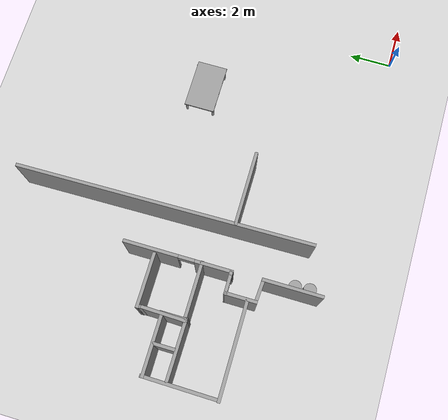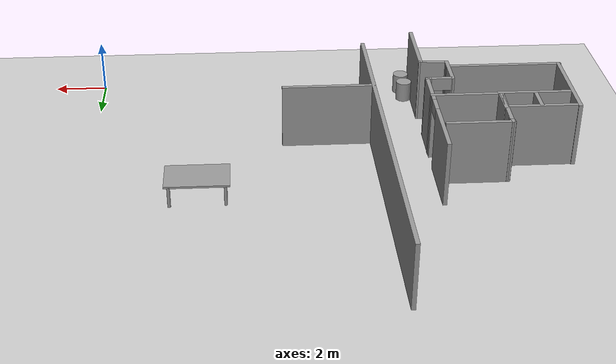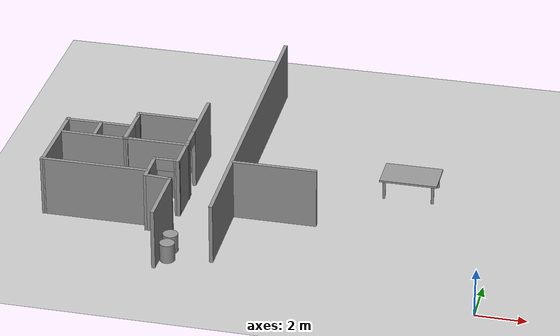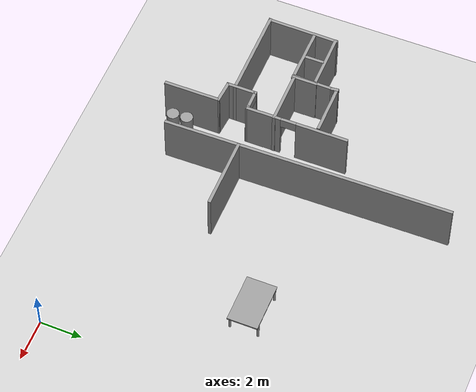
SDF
<sdf version="1.6">
 <world name="default">
  <model name="ground_plane">
   <static>1</static>
   <link name="link">
    <collision name="collision">
     <geometry><plane><normal>0 0 1</normal><size>100 100</size></plane></geometry>
     <surface>
      <contact><collide_bitmask>65535</collide_bitmask></contact>
      <friction><ode><mu>100</mu><mu2>50</mu2></ode></friction>
     </surface>
    </collision>
    <visual name="visual">
     <cast_shadows>0</cast_shadows>
     <geometry><plane><normal>0 0 1</normal><size>100 100</size></plane></geometry>
     <material>
      <script><uri>file://media/materials/scripts/gazebo.material</uri><name>Gazebo/Grey</name></script>
     </material>
    </visual>
   </link>
  </model>
  <model name="six_floor">
   <link name="Wall_138">
    <pose>-18.2446 5.1436 0 0 -0 0</pose>
    <visual name="Wall_138_Visual">
     <pose>0 0 1.25 0 -0 0</pose>
     <geometry><box><size>2.75 0.15 2.5</size></box></geometry>
     <material>
      <script><uri>file://media/materials/scripts/gazebo.material</uri><name>Gazebo/Grey</name></script>
      <ambient>1 1 1 1</ambient>
     </material>
     <meta><layer>0</layer></meta>
    </visual>
    <collision name="Wall_138_Collision">
     <pose>0 0 1.25 0 -0 0</pose>
     <geometry><box><size>2.75 0.15 2.5</size></box></geometry>
     <surface>
      <friction>
       <ode><mu>1</mu><mu2>1</mu2><fdir1>0 0 0</fdir1><slip1>0</slip1><slip2>0</slip2></ode>
       <torsional>
        <coefficient>1</coefficient>
        <patch_radius>0</patch_radius>
        <surface_radius>0</surface_radius>
        <use_patch_radius>1</use_patch_radius>
        <ode><slip>0</slip></ode>
       </torsional>
      </friction>
      <bounce><restitution_coefficient>0</restitution_coefficient><threshold>1e+06</threshold></bounce>
      <contact>
       <collide_without_contact>0</collide_without_contact>
       <collide_without_contact_bitmask>1</collide_without_contact_bitmask>
       <collide_bitmask>1</collide_bitmask>
       <ode>
        <soft_cfm>0</soft_cfm>
        <soft_erp>0.2</soft_erp>
        <kp>1e+13</kp>
        <kd>1</kd>
        <max_vel>0.01</max_vel>
        <min_depth>0</min_depth>
       </ode>
       <bullet>
        <split_impulse>1</split_impulse>
        <split_impulse_penetration_threshold>-0.01</split_impulse_penetration_threshold>
        <soft_cfm>0</soft_cfm>
        <soft_erp>0.2</soft_erp>
        <kp>1e+13</kp>
        <kd>1</kd>
       </bullet>
      </contact>
     </surface>
    </collision>
   </link>
   <link name="Wall_163">
    <pose>-10.5409 3.22741 0 0 -0 0</pose>
    <visual name="Wall_163_Visual">
     <pose>0 0 1.25 0 -0 0</pose>
     <geometry><box><size>3.5 0.15 2.5</size></box></geometry>
     <material>
      <script><uri>file://media/materials/scripts/gazebo.material</uri><name>Gazebo/Grey</name></script>
      <ambient>1 1 1 1</ambient>
     </material>
     <meta><layer>0</layer></meta>
    </visual>
    <collision name="Wall_163_Collision">
     <pose>0 0 1.25 0 -0 0</pose>
     <geometry><box><size>3.5 0.15 2.5</size></box></geometry>
     <surface>
      <friction>
       <ode><mu>1</mu><mu2>1</mu2><fdir1>0 0 0</fdir1><slip1>0</slip1><slip2>0</slip2></ode>
       <torsional>
        <coefficient>1</coefficient>
        <patch_radius>0</patch_radius>
        <surface_radius>0</surface_radius>
        <use_patch_radius>1</use_patch_radius>
        <ode><slip>0</slip></ode>
       </torsional>
      </friction>
      <bounce><restitution_coefficient>0</restitution_coefficient><threshold>1e+06</threshold></bounce>
      <contact>
       <collide_without_contact>0</collide_without_contact>
       <collide_without_contact_bitmask>1</collide_without_contact_bitmask>
       <collide_bitmask>1</collide_bitmask>
       <ode>
        <soft_cfm>0</soft_cfm>
        <soft_erp>0.2</soft_erp>
        <kp>1e+13</kp>
        <kd>1</kd>
        <max_vel>0.01</max_vel>
        <min_depth>0</min_depth>
       </ode>
       <bullet>
        <split_impulse>1</split_impulse>
        <split_impulse_penetration_threshold>-0.01</split_impulse_penetration_threshold>
        <soft_cfm>0</soft_cfm>
        <soft_erp>0.2</soft_erp>
        <kp>1e+13</kp>
        <kd>1</kd>
       </bullet>
      </contact>
     </surface>
    </collision>
   </link>
   <link name="Wall_174">
    <pose>-15.6852 6.24087 0 0 -0 3.14159</pose>
    <visual name="Wall_174_Visual">
     <pose>0 0 1.25 0 -0 0</pose>
     <geometry><box><size>2.5 0.15 2.5</size></box></geometry>
     <material>
      <script><uri>file://media/materials/scripts/gazebo.material</uri><name>Gazebo/Grey</name></script>
      <ambient>1 1 1 1</ambient>
     </material>
     <meta><layer>0</layer></meta>
    </visual>
    <collision name="Wall_174_Collision">
     <pose>0 0 1.25 0 -0 0</pose>
     <geometry><box><size>2.5 0.15 2.5</size></box></geometry>
     <surface>
      <friction>
       <ode><mu>1</mu><mu2>1</mu2><fdir1>0 0 0</fdir1><slip1>0</slip1><slip2>0</slip2></ode>
       <torsional>
        <coefficient>1</coefficient>
        <patch_radius>0</patch_radius>
        <surface_radius>0</surface_radius>
        <use_patch_radius>1</use_patch_radius>
        <ode><slip>0</slip></ode>
       </torsional>
      </friction>
      <bounce><restitution_coefficient>0</restitution_coefficient><threshold>1e+06</threshold></bounce>
      <contact>
       <collide_without_contact>0</collide_without_contact>
       <collide_without_contact_bitmask>1</collide_without_contact_bitmask>
       <collide_bitmask>1</collide_bitmask>
       <ode>
        <soft_cfm>0</soft_cfm>
        <soft_erp>0.2</soft_erp>
        <kp>1e+13</kp>
        <kd>1</kd>
        <max_vel>0.01</max_vel>
        <min_depth>0</min_depth>
       </ode>
       <bullet>
        <split_impulse>1</split_impulse>
        <split_impulse_penetration_threshold>-0.01</split_impulse_penetration_threshold>
        <soft_cfm>0</soft_cfm>
        <soft_erp>0.2</soft_erp>
        <kp>1e+13</kp>
        <kd>1</kd>
       </bullet>
      </contact>
     </surface>
    </collision>
   </link>
   <link name="Wall_175">
    <pose>-16.846 6.12615 0 0 0 -1.44708</pose>
    <visual name="Wall_175_Visual">
     <pose>0 0 1.25 0 -0 0</pose>
     <geometry><box><size>0.381205 0.15 2.5</size></box></geometry>
     <material>
      <script><uri>file://media/materials/scripts/gazebo.material</uri><name>Gazebo/Grey</name></script>
      <ambient>1 1 1 1</ambient>
     </material>
     <meta><layer>0</layer></meta>
    </visual>
    <collision name="Wall_175_Collision">
     <pose>0 0 1.25 0 -0 0</pose>
     <geometry><box><size>0.381205 0.15 2.5</size></box></geometry>
     <surface>
      <friction>
       <ode><mu>1</mu><mu2>1</mu2><fdir1>0 0 0</fdir1><slip1>0</slip1><slip2>0</slip2></ode>
       <torsional>
        <coefficient>1</coefficient>
        <patch_radius>0</patch_radius>
        <surface_radius>0</surface_radius>
        <use_patch_radius>1</use_patch_radius>
        <ode><slip>0</slip></ode>
       </torsional>
      </friction>
      <bounce><restitution_coefficient>0</restitution_coefficient><threshold>1e+06</threshold></bounce>
      <contact>
       <collide_without_contact>0</collide_without_contact>
       <collide_without_contact_bitmask>1</collide_without_contact_bitmask>
       <collide_bitmask>1</collide_bitmask>
       <ode>
        <soft_cfm>0</soft_cfm>
        <soft_erp>0.2</soft_erp>
        <kp>1e+13</kp>
        <kd>1</kd>
        <max_vel>0.01</max_vel>
        <min_depth>0</min_depth>
       </ode>
       <bullet>
        <split_impulse>1</split_impulse>
        <split_impulse_penetration_threshold>-0.01</split_impulse_penetration_threshold>
        <soft_cfm>0</soft_cfm>
        <soft_erp>0.2</soft_erp>
        <kp>1e+13</kp>
        <kd>1</kd>
       </bullet>
      </contact>
     </surface>
    </collision>
   </link>
   <link name="Wall_193">
    <pose>-18.1172 4.09837 0 0 0 -0.007618</pose>
    <visual name="Wall_193_Visual">
     <pose>0 0 1.25 0 -0 0</pose>
     <geometry><box><size>2.78202 0.15 2.5</size></box></geometry>
     <material>
      <script><uri>file://media/materials/scripts/gazebo.material</uri><name>Gazebo/Grey</name></script>
      <ambient>1 1 1 1</ambient>
     </material>
     <meta><layer>0</layer></meta>
    </visual>
    <collision name="Wall_193_Collision">
     <pose>0 0 1.25 0 -0 0</pose>
     <geometry><box><size>2.78202 0.15 2.5</size></box></geometry>
     <surface>
      <friction>
       <ode><mu>1</mu><mu2>1</mu2><fdir1>0 0 0</fdir1><slip1>0</slip1><slip2>0</slip2></ode>
       <torsional>
        <coefficient>1</coefficient>
        <patch_radius>0</patch_radius>
        <surface_radius>0</surface_radius>
        <use_patch_radius>1</use_patch_radius>
        <ode><slip>0</slip></ode>
       </torsional>
      </friction>
      <bounce><restitution_coefficient>0</restitution_coefficient><threshold>1e+06</threshold></bounce>
      <contact>
       <collide_without_contact>0</collide_without_contact>
       <collide_without_contact_bitmask>1</collide_without_contact_bitmask>
       <collide_bitmask>1</collide_bitmask>
       <ode>
        <soft_cfm>0</soft_cfm>
        <soft_erp>0.2</soft_erp>
        <kp>1e+13</kp>
        <kd>1</kd>
        <max_vel>0.01</max_vel>
        <min_depth>0</min_depth>
       </ode>
       <bullet>
        <split_impulse>1</split_impulse>
        <split_impulse_penetration_threshold>-0.01</split_impulse_penetration_threshold>
        <soft_cfm>0</soft_cfm>
        <soft_erp>0.2</soft_erp>
        <kp>1e+13</kp>
        <kd>1</kd>
       </bullet>
      </contact>
     </surface>
    </collision>
   </link>
   <link name="Wall_194">
    <pose>-16.8213 4.63835 0 0 -0 1.5708</pose>
    <visual name="Wall_194_Visual">
     <pose>0 0 1.25 0 -0 0</pose>
     <geometry><box><size>1.25 0.15 2.5</size></box></geometry>
     <material>
      <script><uri>file://media/materials/scripts/gazebo.material</uri><name>Gazebo/Grey</name></script>
      <ambient>1 1 1 1</ambient>
     </material>
     <meta><layer>0</layer></meta>
    </visual>
    <collision name="Wall_194_Collision">
     <pose>0 0 1.25 0 -0 0</pose>
     <geometry><box><size>1.25 0.15 2.5</size></box></geometry>
     <surface>
      <friction>
       <ode><mu>1</mu><mu2>1</mu2><fdir1>0 0 0</fdir1><slip1>0</slip1><slip2>0</slip2></ode>
       <torsional>
        <coefficient>1</coefficient>
        <patch_radius>0</patch_radius>
        <surface_radius>0</surface_radius>
        <use_patch_radius>1</use_patch_radius>
        <ode><slip>0</slip></ode>
       </torsional>
      </friction>
      <bounce><restitution_coefficient>0</restitution_coefficient><threshold>1e+06</threshold></bounce>
      <contact>
       <collide_without_contact>0</collide_without_contact>
       <collide_without_contact_bitmask>1</collide_without_contact_bitmask>
       <collide_bitmask>1</collide_bitmask>
       <ode>
        <soft_cfm>0</soft_cfm>
        <soft_erp>0.2</soft_erp>
        <kp>1e+13</kp>
        <kd>1</kd>
        <max_vel>0.01</max_vel>
        <min_depth>0</min_depth>
       </ode>
       <bullet>
        <split_impulse>1</split_impulse>
        <split_impulse_penetration_threshold>-0.01</split_impulse_penetration_threshold>
        <soft_cfm>0</soft_cfm>
        <soft_erp>0.2</soft_erp>
        <kp>1e+13</kp>
        <kd>1</kd>
       </bullet>
      </contact>
     </surface>
    </collision>
   </link>
   <link name="Wall_196">
    <pose>-18.1471 4.65537 0 0 -0 1.5708</pose>
    <visual name="Wall_196_Visual">
     <pose>0 0 1.25 0 -0 0</pose>
     <geometry><box><size>1 0.15 2.5</size></box></geometry>
     <material>
      <script><uri>file://media/materials/scripts/gazebo.material</uri><name>Gazebo/Grey</name></script>
      <ambient>1 1 1 1</ambient>
     </material>
     <meta><layer>0</layer></meta>
    </visual>
    <collision name="Wall_196_Collision">
     <pose>0 0 1.25 0 -0 0</pose>
     <geometry><box><size>1 0.15 2.5</size></box></geometry>
     <surface>
      <friction>
       <ode><mu>1</mu><mu2>1</mu2><fdir1>0 0 0</fdir1><slip1>0</slip1><slip2>0</slip2></ode>
       <torsional>
        <coefficient>1</coefficient>
        <patch_radius>0</patch_radius>
        <surface_radius>0</surface_radius>
        <use_patch_radius>1</use_patch_radius>
        <ode><slip>0</slip></ode>
       </torsional>
      </friction>
      <bounce><restitution_coefficient>0</restitution_coefficient><threshold>1e+06</threshold></bounce>
      <contact>
       <collide_without_contact>0</collide_without_contact>
       <collide_without_contact_bitmask>1</collide_without_contact_bitmask>
       <collide_bitmask>1</collide_bitmask>
       <ode>
        <soft_cfm>0</soft_cfm>
        <soft_erp>0.2</soft_erp>
        <kp>1e+13</kp>
        <kd>1</kd>
        <max_vel>0.01</max_vel>
        <min_depth>0</min_depth>
       </ode>
       <bullet>
        <split_impulse>1</split_impulse>
        <split_impulse_penetration_threshold>-0.01</split_impulse_penetration_threshold>
        <soft_cfm>0</soft_cfm>
        <soft_erp>0.2</soft_erp>
        <kp>1e+13</kp>
        <kd>1</kd>
       </bullet>
      </contact>
     </surface>
    </collision>
   </link>
   <link name="Wall_33">
    <pose>-14.266 0.094056 0 0 -0 1.5708</pose>
    <visual name="Wall_33_Visual">
     <pose>0 0 1.25 0 -0 0</pose>
     <geometry><box><size>2.75 0.15 2.5</size></box></geometry>
     <material>
      <script><uri>file://media/materials/scripts/gazebo.material</uri><name>Gazebo/Grey</name></script>
      <ambient>1 1 1 1</ambient>
     </material>
     <meta><layer>0</layer></meta>
    </visual>
    <collision name="Wall_33_Collision">
     <pose>0 0 1.25 0 -0 0</pose>
     <geometry><box><size>2.75 0.15 2.5</size></box></geometry>
     <surface>
      <friction>
       <ode><mu>1</mu><mu2>1</mu2><fdir1>0 0 0</fdir1><slip1>0</slip1><slip2>0</slip2></ode>
       <torsional>
        <coefficient>1</coefficient>
        <patch_radius>0</patch_radius>
        <surface_radius>0</surface_radius>
        <use_patch_radius>1</use_patch_radius>
        <ode><slip>0</slip></ode>
       </torsional>
      </friction>
      <bounce><restitution_coefficient>0</restitution_coefficient><threshold>1e+06</threshold></bounce>
      <contact>
       <collide_without_contact>0</collide_without_contact>
       <collide_without_contact_bitmask>1</collide_without_contact_bitmask>
       <collide_bitmask>1</collide_bitmask>
       <ode>
        <soft_cfm>0</soft_cfm>
        <soft_erp>0.2</soft_erp>
        <kp>1e+13</kp>
        <kd>1</kd>
        <max_vel>0.01</max_vel>
        <min_depth>0</min_depth>
       </ode>
       <bullet>
        <split_impulse>1</split_impulse>
        <split_impulse_penetration_threshold>-0.01</split_impulse_penetration_threshold>
        <soft_cfm>0</soft_cfm>
        <soft_erp>0.2</soft_erp>
        <kp>1e+13</kp>
        <kd>1</kd>
       </bullet>
      </contact>
     </surface>
    </collision>
   </link>
   <link name="Wall_34">
    <pose>-14.7543 1.42753 0 0 -0 3.07314</pose>
    <visual name="Wall_34_Visual">
     <pose>0 0 1.25 0 -0 0</pose>
     <geometry><box><size>1.12888 0.15 2.5</size></box></geometry>
     <material>
      <script><uri>file://media/materials/scripts/gazebo.material</uri><name>Gazebo/Grey</name></script>
      <ambient>1 1 1 1</ambient>
     </material>
     <meta><layer>0</layer></meta>
    </visual>
    <collision name="Wall_34_Collision">
     <pose>0 0 1.25 0 -0 0</pose>
     <geometry><box><size>1.12888 0.15 2.5</size></box></geometry>
     <surface>
      <friction>
       <ode><mu>1</mu><mu2>1</mu2><fdir1>0 0 0</fdir1><slip1>0</slip1><slip2>0</slip2></ode>
       <torsional>
        <coefficient>1</coefficient>
        <patch_radius>0</patch_radius>
        <surface_radius>0</surface_radius>
        <use_patch_radius>1</use_patch_radius>
        <ode><slip>0</slip></ode>
       </torsional>
      </friction>
      <bounce><restitution_coefficient>0</restitution_coefficient><threshold>1e+06</threshold></bounce>
      <contact>
       <collide_without_contact>0</collide_without_contact>
       <collide_without_contact_bitmask>1</collide_without_contact_bitmask>
       <collide_bitmask>1</collide_bitmask>
       <ode>
        <soft_cfm>0</soft_cfm>
        <soft_erp>0.2</soft_erp>
        <kp>1e+13</kp>
        <kd>1</kd>
        <max_vel>0.01</max_vel>
        <min_depth>0</min_depth>
       </ode>
       <bullet>
        <split_impulse>1</split_impulse>
        <split_impulse_penetration_threshold>-0.01</split_impulse_penetration_threshold>
        <soft_cfm>0</soft_cfm>
        <soft_erp>0.2</soft_erp>
        <kp>1e+13</kp>
        <kd>1</kd>
       </bullet>
      </contact>
     </surface>
    </collision>
   </link>
   <link name="Wall_35">
    <pose>-15.2774 2.13601 0 0 -0 1.5708</pose>
    <visual name="Wall_35_Visual">
     <pose>0 0 1.25 0 -0 0</pose>
     <geometry><box><size>1.5 0.15 2.5</size></box></geometry>
     <material>
      <script><uri>file://media/materials/scripts/gazebo.material</uri><name>Gazebo/Grey</name></script>
      <ambient>1 1 1 1</ambient>
     </material>
     <meta><layer>0</layer></meta>
    </visual>
    <collision name="Wall_35_Collision">
     <pose>0 0 1.25 0 -0 0</pose>
     <geometry><box><size>1.5 0.15 2.5</size></box></geometry>
     <surface>
      <friction>
       <ode><mu>1</mu><mu2>1</mu2><fdir1>0 0 0</fdir1><slip1>0</slip1><slip2>0</slip2></ode>
       <torsional>
        <coefficient>1</coefficient>
        <patch_radius>0</patch_radius>
        <surface_radius>0</surface_radius>
        <use_patch_radius>1</use_patch_radius>
        <ode><slip>0</slip></ode>
       </torsional>
      </friction>
      <bounce><restitution_coefficient>0</restitution_coefficient><threshold>1e+06</threshold></bounce>
      <contact>
       <collide_without_contact>0</collide_without_contact>
       <collide_without_contact_bitmask>1</collide_without_contact_bitmask>
       <collide_bitmask>1</collide_bitmask>
       <ode>
        <soft_cfm>0</soft_cfm>
        <soft_erp>0.2</soft_erp>
        <kp>1e+13</kp>
        <kd>1</kd>
        <max_vel>0.01</max_vel>
        <min_depth>0</min_depth>
       </ode>
       <bullet>
        <split_impulse>1</split_impulse>
        <split_impulse_penetration_threshold>-0.01</split_impulse_penetration_threshold>
        <soft_cfm>0</soft_cfm>
        <soft_erp>0.2</soft_erp>
        <kp>1e+13</kp>
        <kd>1</kd>
       </bullet>
      </contact>
     </surface>
    </collision>
   </link>
   <link name="Wall_36">
    <pose>-14.7966 2.8134 0 0 -0 0.004978</pose>
    <visual name="Wall_36_Visual_0">
     <pose>-0.499134 0 1.25 0 -0 0</pose>
     <geometry><box><size>0.113205 0.15 2.5</size></box></geometry>
     <material>
      <script><uri>file://media/materials/scripts/gazebo.material</uri><name>Gazebo/Grey</name></script>
      <ambient>1 1 1 1</ambient>
     </material>
     <meta><layer>0</layer></meta>
    </visual>
    <visual name="Wall_36_Visual_1">
     <pose>0.441426 0 1.25 0 -0 0</pose>
     <geometry><box><size>0.228622 0.15 2.5</size></box></geometry>
     <material>
      <script><uri>file://media/materials/scripts/gazebo.material</uri><name>Gazebo/Grey</name></script>
      <ambient>1 1 1 1</ambient>
     </material>
     <meta><layer>0</layer></meta>
    </visual>
    <visual name="Wall_36_Visual_2">
     <pose>-0.057709 0 2.25 0 -0 0</pose>
     <geometry><box><size>0.769647 0.15 0.5</size></box></geometry>
     <material>
      <script><uri>file://media/materials/scripts/gazebo.material</uri><name>Gazebo/Grey</name></script>
      <ambient>1 1 1 1</ambient>
     </material>
     <meta><layer>0</layer></meta>
    </visual>
    <collision name="Wall_36_Collision_0">
     <pose>-0.499134 0 1.25 0 -0 0</pose>
     <geometry><box><size>0.113205 0.15 2.5</size></box></geometry>
     <surface>
      <friction>
       <ode><mu>1</mu><mu2>1</mu2><fdir1>0 0 0</fdir1><slip1>0</slip1><slip2>0</slip2></ode>
       <torsional>
        <coefficient>1</coefficient>
        <patch_radius>0</patch_radius>
        <surface_radius>0</surface_radius>
        <use_patch_radius>1</use_patch_radius>
        <ode><slip>0</slip></ode>
       </torsional>
      </friction>
      <bounce><restitution_coefficient>0</restitution_coefficient><threshold>1e+06</threshold></bounce>
      <contact>
       <collide_without_contact>0</collide_without_contact>
       <collide_without_contact_bitmask>1</collide_without_contact_bitmask>
       <collide_bitmask>1</collide_bitmask>
       <ode>
        <soft_cfm>0</soft_cfm>
        <soft_erp>0.2</soft_erp>
        <kp>1e+13</kp>
        <kd>1</kd>
        <max_vel>0.01</max_vel>
        <min_depth>0</min_depth>
       </ode>
       <bullet>
        <split_impulse>1</split_impulse>
        <split_impulse_penetration_threshold>-0.01</split_impulse_penetration_threshold>
        <soft_cfm>0</soft_cfm>
        <soft_erp>0.2</soft_erp>
        <kp>1e+13</kp>
        <kd>1</kd>
       </bullet>
      </contact>
     </surface>
    </collision>
    <collision name="Wall_36_Collision_2">
     <pose>-0.057709 0 2.25 0 -0 0</pose>
     <geometry><box><size>0.769647 0.15 0.5</size></box></geometry>
     <surface>
      <friction>
       <ode><mu>1</mu><mu2>1</mu2><fdir1>0 0 0</fdir1><slip1>0</slip1><slip2>0</slip2></ode>
       <torsional>
        <coefficient>1</coefficient>
        <patch_radius>0</patch_radius>
        <surface_radius>0</surface_radius>
        <use_patch_radius>1</use_patch_radius>
        <ode><slip>0</slip></ode>
       </torsional>
      </friction>
      <bounce><restitution_coefficient>0</restitution_coefficient><threshold>1e+06</threshold></bounce>
      <contact>
       <collide_without_contact>0</collide_without_contact>
       <collide_without_contact_bitmask>1</collide_without_contact_bitmask>
       <collide_bitmask>1</collide_bitmask>
       <ode>
        <soft_cfm>0</soft_cfm>
        <soft_erp>0.2</soft_erp>
        <kp>1e+13</kp>
        <kd>1</kd>
        <max_vel>0.01</max_vel>
        <min_depth>0</min_depth>
       </ode>
       <bullet>
        <split_impulse>1</split_impulse>
        <split_impulse_penetration_threshold>-0.01</split_impulse_penetration_threshold>
        <soft_cfm>0</soft_cfm>
        <soft_erp>0.2</soft_erp>
        <kp>1e+13</kp>
        <kd>1</kd>
       </bullet>
      </contact>
     </surface>
    </collision>
    <collision name="Wall_36_Collision_1">
     <pose>0.441426 0 1.25 0 -0 0</pose>
     <geometry><box><size>0.228622 0.15 2.5</size></box></geometry>
     <surface>
      <friction>
       <ode><mu>1</mu><mu2>1</mu2><fdir1>0 0 0</fdir1><slip1>0</slip1><slip2>0</slip2></ode>
       <torsional>
        <coefficient>1</coefficient>
        <patch_radius>0</patch_radius>
        <surface_radius>0</surface_radius>
        <use_patch_radius>1</use_patch_radius>
        <ode><slip>0</slip></ode>
       </torsional>
      </friction>
      <bounce><restitution_coefficient>0</restitution_coefficient><threshold>1e+06</threshold></bounce>
      <contact>
       <collide_without_contact>0</collide_without_contact>
       <collide_without_contact_bitmask>1</collide_without_contact_bitmask>
       <collide_bitmask>1</collide_bitmask>
       <ode>
        <soft_cfm>0</soft_cfm>
        <soft_erp>0.2</soft_erp>
        <kp>1e+13</kp>
        <kd>1</kd>
        <max_vel>0.01</max_vel>
        <min_depth>0</min_depth>
       </ode>
       <bullet>
        <split_impulse>1</split_impulse>
        <split_impulse_penetration_threshold>-0.01</split_impulse_penetration_threshold>
        <soft_cfm>0</soft_cfm>
        <soft_erp>0.2</soft_erp>
        <kp>1e+13</kp>
        <kd>1</kd>
       </bullet>
      </contact>
     </surface>
    </collision>
   </link>
   <link name="Wall_39">
    <pose>-14.3159 5.22576 0 0 -0 1.5708</pose>
    <visual name="Wall_39_Visual_0">
     <pose>-1.6277 0 1.25 0 -0 0</pose>
     <geometry><box><size>1.74461 0.15 2.5</size></box></geometry>
     <material>
      <script><uri>file://media/materials/scripts/gazebo.material</uri><name>Gazebo/Grey</name></script>
      <ambient>1 1 1 1</ambient>
     </material>
     <meta><layer>0</layer></meta>
    </visual>
    <visual name="Wall_39_Visual_1">
     <pose>1.2432 0 1.25 0 -0 0</pose>
     <geometry><box><size>2.51359 0.15 2.5</size></box></geometry>
     <material>
      <script><uri>file://media/materials/scripts/gazebo.material</uri><name>Gazebo/Grey</name></script>
      <ambient>1 1 1 1</ambient>
     </material>
     <meta><layer>0</layer></meta>
    </visual>
    <visual name="Wall_39_Visual_2">
     <pose>-0.384493 0 2.25 0 -0 0</pose>
     <geometry><box><size>0.741802 0.15 0.5</size></box></geometry>
     <material>
      <script><uri>file://media/materials/scripts/gazebo.material</uri><name>Gazebo/Grey</name></script>
      <ambient>1 1 1 1</ambient>
     </material>
     <meta><layer>0</layer></meta>
    </visual>
    <collision name="Wall_39_Collision_1">
     <pose>1.2432 0 1.25 0 -0 0</pose>
     <geometry><box><size>2.51359 0.15 2.5</size></box></geometry>
     <surface>
      <friction>
       <ode><mu>1</mu><mu2>1</mu2><fdir1>0 0 0</fdir1><slip1>0</slip1><slip2>0</slip2></ode>
       <torsional>
        <coefficient>1</coefficient>
        <patch_radius>0</patch_radius>
        <surface_radius>0</surface_radius>
        <use_patch_radius>1</use_patch_radius>
        <ode><slip>0</slip></ode>
       </torsional>
      </friction>
      <bounce><restitution_coefficient>0</restitution_coefficient><threshold>1e+06</threshold></bounce>
      <contact>
       <collide_without_contact>0</collide_without_contact>
       <collide_without_contact_bitmask>1</collide_without_contact_bitmask>
       <collide_bitmask>1</collide_bitmask>
       <ode>
        <soft_cfm>0</soft_cfm>
        <soft_erp>0.2</soft_erp>
        <kp>1e+13</kp>
        <kd>1</kd>
        <max_vel>0.01</max_vel>
        <min_depth>0</min_depth>
       </ode>
       <bullet>
        <split_impulse>1</split_impulse>
        <split_impulse_penetration_threshold>-0.01</split_impulse_penetration_threshold>
        <soft_cfm>0</soft_cfm>
        <soft_erp>0.2</soft_erp>
        <kp>1e+13</kp>
        <kd>1</kd>
       </bullet>
      </contact>
     </surface>
    </collision>
    <collision name="Wall_39_Collision_0">
     <pose>-1.6277 0 1.25 0 -0 0</pose>
     <geometry><box><size>1.74461 0.15 2.5</size></box></geometry>
     <surface>
      <friction>
       <ode><mu>1</mu><mu2>1</mu2><fdir1>0 0 0</fdir1><slip1>0</slip1><slip2>0</slip2></ode>
       <torsional>
        <coefficient>1</coefficient>
        <patch_radius>0</patch_radius>
        <surface_radius>0</surface_radius>
        <use_patch_radius>1</use_patch_radius>
        <ode><slip>0</slip></ode>
       </torsional>
      </friction>
      <bounce><restitution_coefficient>0</restitution_coefficient><threshold>1e+06</threshold></bounce>
      <contact>
       <collide_without_contact>0</collide_without_contact>
       <collide_without_contact_bitmask>1</collide_without_contact_bitmask>
       <collide_bitmask>1</collide_bitmask>
       <ode>
        <soft_cfm>0</soft_cfm>
        <soft_erp>0.2</soft_erp>
        <kp>1e+13</kp>
        <kd>1</kd>
        <max_vel>0.01</max_vel>
        <min_depth>0</min_depth>
       </ode>
       <bullet>
        <split_impulse>1</split_impulse>
        <split_impulse_penetration_threshold>-0.01</split_impulse_penetration_threshold>
        <soft_cfm>0</soft_cfm>
        <soft_erp>0.2</soft_erp>
        <kp>1e+13</kp>
        <kd>1</kd>
       </bullet>
      </contact>
     </surface>
    </collision>
    <collision name="Wall_39_Collision_2">
     <pose>-0.384493 0 2.25 0 -0 0</pose>
     <geometry><box><size>0.741802 0.15 0.5</size></box></geometry>
     <surface>
      <friction>
       <ode><mu>1</mu><mu2>1</mu2><fdir1>0 0 0</fdir1><slip1>0</slip1><slip2>0</slip2></ode>
       <torsional>
        <coefficient>1</coefficient>
        <patch_radius>0</patch_radius>
        <surface_radius>0</surface_radius>
        <use_patch_radius>1</use_patch_radius>
        <ode><slip>0</slip></ode>
       </torsional>
      </friction>
      <bounce><restitution_coefficient>0</restitution_coefficient><threshold>1e+06</threshold></bounce>
      <contact>
       <collide_without_contact>0</collide_without_contact>
       <collide_without_contact_bitmask>1</collide_without_contact_bitmask>
       <collide_bitmask>1</collide_bitmask>
       <ode>
        <soft_cfm>0</soft_cfm>
        <soft_erp>0.2</soft_erp>
        <kp>1e+13</kp>
        <kd>1</kd>
        <max_vel>0.01</max_vel>
        <min_depth>0</min_depth>
       </ode>
       <bullet>
        <split_impulse>1</split_impulse>
        <split_impulse_penetration_threshold>-0.01</split_impulse_penetration_threshold>
        <soft_cfm>0</soft_cfm>
        <soft_erp>0.2</soft_erp>
        <kp>1e+13</kp>
        <kd>1</kd>
       </bullet>
      </contact>
     </surface>
    </collision>
   </link>
   <link name="Wall_68">
    <pose>-12.2803 6.51671 0 0 -0 1.58436</pose>
    <visual name="Wall_68_Visual">
     <pose>0 0 1.25 0 -0 0</pose>
     <geometry><box><size>13.8184 0.15 2.5</size></box></geometry>
     <material>
      <script><uri>file://media/materials/scripts/gazebo.material</uri><name>Gazebo/Grey</name></script>
      <ambient>1 1 1 1</ambient>
     </material>
     <meta><layer>0</layer></meta>
    </visual>
    <collision name="Wall_68_Collision">
     <pose>0 0 1.25 0 -0 0</pose>
     <geometry><box><size>13.8184 0.15 2.5</size></box></geometry>
     <surface>
      <friction>
       <ode><mu>1</mu><mu2>1</mu2><fdir1>0 0 0</fdir1><slip1>0</slip1><slip2>0</slip2></ode>
       <torsional>
        <coefficient>1</coefficient>
        <patch_radius>0</patch_radius>
        <surface_radius>0</surface_radius>
        <use_patch_radius>1</use_patch_radius>
        <ode><slip>0</slip></ode>
       </torsional>
      </friction>
      <bounce><restitution_coefficient>0</restitution_coefficient><threshold>1e+06</threshold></bounce>
      <contact>
       <collide_without_contact>0</collide_without_contact>
       <collide_without_contact_bitmask>1</collide_without_contact_bitmask>
       <collide_bitmask>1</collide_bitmask>
       <ode>
        <soft_cfm>0</soft_cfm>
        <soft_erp>0.2</soft_erp>
        <kp>1e+13</kp>
        <kd>1</kd>
        <max_vel>0.01</max_vel>
        <min_depth>0</min_depth>
       </ode>
       <bullet>
        <split_impulse>1</split_impulse>
        <split_impulse_penetration_threshold>-0.01</split_impulse_penetration_threshold>
        <soft_cfm>0</soft_cfm>
        <soft_erp>0.2</soft_erp>
        <kp>1e+13</kp>
        <kd>1</kd>
       </bullet>
      </contact>
     </surface>
    </collision>
   </link>
   <link name="Wall_72">
    <pose>-15.5978 4.14063 0 0 -0 3.14159</pose>
    <visual name="Wall_72_Visual">
     <pose>0 0 1.25 0 -0 0</pose>
     <geometry><box><size>2.75 0.15 2.5</size></box></geometry>
     <material>
      <script><uri>file://media/materials/scripts/gazebo.material</uri><name>Gazebo/Grey</name></script>
      <ambient>1 1 1 1</ambient>
     </material>
     <meta><layer>0</layer></meta>
    </visual>
    <collision name="Wall_72_Collision">
     <pose>0 0 1.25 0 -0 0</pose>
     <geometry><box><size>2.75 0.15 2.5</size></box></geometry>
     <surface>
      <friction>
       <ode><mu>1</mu><mu2>1</mu2><fdir1>0 0 0</fdir1><slip1>0</slip1><slip2>0</slip2></ode>
       <torsional>
        <coefficient>1</coefficient>
        <patch_radius>0</patch_radius>
        <surface_radius>0</surface_radius>
        <use_patch_radius>1</use_patch_radius>
        <ode><slip>0</slip></ode>
       </torsional>
      </friction>
      <bounce><restitution_coefficient>0</restitution_coefficient><threshold>1e+06</threshold></bounce>
      <contact>
       <collide_without_contact>0</collide_without_contact>
       <collide_without_contact_bitmask>1</collide_without_contact_bitmask>
       <collide_bitmask>1</collide_bitmask>
       <ode>
        <soft_cfm>0</soft_cfm>
        <soft_erp>0.2</soft_erp>
        <kp>1e+13</kp>
        <kd>1</kd>
        <max_vel>0.01</max_vel>
        <min_depth>0</min_depth>
       </ode>
       <bullet>
        <split_impulse>1</split_impulse>
        <split_impulse_penetration_threshold>-0.01</split_impulse_penetration_threshold>
        <soft_cfm>0</soft_cfm>
        <soft_erp>0.2</soft_erp>
        <kp>1e+13</kp>
        <kd>1</kd>
       </bullet>
      </contact>
     </surface>
    </collision>
   </link>
   <link name="Wall_73">
    <pose>-16.8533 5.07604 0 0 -0 1.54769</pose>
    <visual name="Wall_73_Visual">
     <pose>0 0 1.25 0 -0 0</pose>
     <geometry><box><size>2.0213 0.15 2.5</size></box></geometry>
     <material>
      <script><uri>file://media/materials/scripts/gazebo.material</uri><name>Gazebo/Grey</name></script>
      <ambient>1 1 1 1</ambient>
     </material>
     <meta><layer>0</layer></meta>
    </visual>
    <collision name="Wall_73_Collision">
     <pose>0 0 1.25 0 -0 0</pose>
     <geometry><box><size>2.0213 0.15 2.5</size></box></geometry>
     <surface>
      <friction>
       <ode><mu>1</mu><mu2>1</mu2><fdir1>0 0 0</fdir1><slip1>0</slip1><slip2>0</slip2></ode>
       <torsional>
        <coefficient>1</coefficient>
        <patch_radius>0</patch_radius>
        <surface_radius>0</surface_radius>
        <use_patch_radius>1</use_patch_radius>
        <ode><slip>0</slip></ode>
       </torsional>
      </friction>
      <bounce><restitution_coefficient>0</restitution_coefficient><threshold>1e+06</threshold></bounce>
      <contact>
       <collide_without_contact>0</collide_without_contact>
       <collide_without_contact_bitmask>1</collide_without_contact_bitmask>
       <collide_bitmask>1</collide_bitmask>
       <ode>
        <soft_cfm>0</soft_cfm>
        <soft_erp>0.2</soft_erp>
        <kp>1e+13</kp>
        <kd>1</kd>
        <max_vel>0.01</max_vel>
        <min_depth>0</min_depth>
       </ode>
       <bullet>
        <split_impulse>1</split_impulse>
        <split_impulse_penetration_threshold>-0.01</split_impulse_penetration_threshold>
        <soft_cfm>0</soft_cfm>
        <soft_erp>0.2</soft_erp>
        <kp>1e+13</kp>
        <kd>1</kd>
       </bullet>
      </contact>
     </surface>
    </collision>
   </link>
   <link name="Wall_75">
    <pose>-19.5646 3.5036 0 0 0 -1.5827</pose>
    <visual name="Wall_75_Visual">
     <pose>0 0 1.25 0 -0 0</pose>
     <geometry><box><size>3.51024 0.15 2.5</size></box></geometry>
     <material>
      <script><uri>file://media/materials/scripts/gazebo.material</uri><name>Gazebo/Grey</name></script>
      <ambient>1 1 1 1</ambient>
     </material>
     <meta><layer>0</layer></meta>
    </visual>
    <collision name="Wall_75_Collision">
     <pose>0 0 1.25 0 -0 0</pose>
     <geometry><box><size>3.51024 0.15 2.5</size></box></geometry>
     <surface>
      <friction>
       <ode><mu>1</mu><mu2>1</mu2><fdir1>0 0 0</fdir1><slip1>0</slip1><slip2>0</slip2></ode>
       <torsional>
        <coefficient>1</coefficient>
        <patch_radius>0</patch_radius>
        <surface_radius>0</surface_radius>
        <use_patch_radius>1</use_patch_radius>
        <ode><slip>0</slip></ode>
       </torsional>
      </friction>
      <bounce><restitution_coefficient>0</restitution_coefficient><threshold>1e+06</threshold></bounce>
      <contact>
       <collide_without_contact>0</collide_without_contact>
       <collide_without_contact_bitmask>1</collide_without_contact_bitmask>
       <collide_bitmask>1</collide_bitmask>
       <ode>
        <soft_cfm>0</soft_cfm>
        <soft_erp>0.2</soft_erp>
        <kp>1e+13</kp>
        <kd>1</kd>
        <max_vel>0.01</max_vel>
        <min_depth>0</min_depth>
       </ode>
       <bullet>
        <split_impulse>1</split_impulse>
        <split_impulse_penetration_threshold>-0.01</split_impulse_penetration_threshold>
        <soft_cfm>0</soft_cfm>
        <soft_erp>0.2</soft_erp>
        <kp>1e+13</kp>
        <kd>1</kd>
       </bullet>
      </contact>
     </surface>
    </collision>
   </link>
   <link name="Wall_76">
    <pose>-17.4411 1.8236 0 0 -0 0</pose>
    <visual name="Wall_76_Visual">
     <pose>0 0 1.25 0 -0 0</pose>
     <geometry><box><size>4.48271 0.15 2.5</size></box></geometry>
     <material>
      <script><uri>file://media/materials/scripts/gazebo.material</uri><name>Gazebo/Grey</name></script>
      <ambient>1 1 1 1</ambient>
     </material>
     <meta><layer>0</layer></meta>
    </visual>
    <collision name="Wall_76_Collision">
     <pose>0 0 1.25 0 -0 0</pose>
     <geometry><box><size>4.48271 0.15 2.5</size></box></geometry>
     <surface>
      <friction>
       <ode><mu>1</mu><mu2>1</mu2><fdir1>0 0 0</fdir1><slip1>0</slip1><slip2>0</slip2></ode>
       <torsional>
        <coefficient>1</coefficient>
        <patch_radius>0</patch_radius>
        <surface_radius>0</surface_radius>
        <use_patch_radius>1</use_patch_radius>
        <ode><slip>0</slip></ode>
       </torsional>
      </friction>
      <bounce><restitution_coefficient>0</restitution_coefficient><threshold>1e+06</threshold></bounce>
      <contact>
       <collide_without_contact>0</collide_without_contact>
       <collide_without_contact_bitmask>1</collide_without_contact_bitmask>
       <collide_bitmask>1</collide_bitmask>
       <ode>
        <soft_cfm>0</soft_cfm>
        <soft_erp>0.2</soft_erp>
        <kp>1e+13</kp>
        <kd>1</kd>
        <max_vel>0.01</max_vel>
        <min_depth>0</min_depth>
       </ode>
       <bullet>
        <split_impulse>1</split_impulse>
        <split_impulse_penetration_threshold>-0.01</split_impulse_penetration_threshold>
        <soft_cfm>0</soft_cfm>
        <soft_erp>0.2</soft_erp>
        <kp>1e+13</kp>
        <kd>1</kd>
       </bullet>
      </contact>
     </surface>
    </collision>
   </link>
   <link name="link_0">
    <inertial>
     <mass>0.277616</mass>
     <inertia>
      <ixx>0.019905</ixx>
      <ixy>0</ixy>
      <ixz>0</ixz>
      <iyy>0.019905</iyy>
      <iyz>0</iyz>
      <izz>0.0125512</izz>
     </inertia>
    </inertial>
    <pose>-13.8453 -0.744736 0.5 0 -0 0</pose>
    <visual name="visual">
     <geometry><cylinder><radius>0.300701</radius><length>0.76755</length></cylinder></geometry>
     <material>
      <lighting>1</lighting>
      <script><uri>file://media/materials/scripts/gazebo.material</uri><name>Gazebo/Grey</name></script>
     </material>
    </visual>
    <collision name="collision">
     <geometry><cylinder><radius>0.300701</radius><length>0.76755</length></cylinder></geometry>
     <surface>
      <friction>
       <ode><mu>1</mu><mu2>1</mu2><fdir1>0 0 0</fdir1><slip1>0</slip1><slip2>0</slip2></ode>
       <torsional>
        <coefficient>1</coefficient>
        <patch_radius>0</patch_radius>
        <surface_radius>0</surface_radius>
        <use_patch_radius>1</use_patch_radius>
        <ode><slip>0</slip></ode>
       </torsional>
      </friction>
      <bounce><restitution_coefficient>0</restitution_coefficient><threshold>1e+06</threshold></bounce>
      <contact>
       <collide_without_contact>0</collide_without_contact>
       <collide_without_contact_bitmask>1</collide_without_contact_bitmask>
       <collide_bitmask>1</collide_bitmask>
       <ode>
        <soft_cfm>0</soft_cfm>
        <soft_erp>0.2</soft_erp>
        <kp>1e+13</kp>
        <kd>1</kd>
        <max_vel>0.01</max_vel>
        <min_depth>0</min_depth>
       </ode>
       <bullet>
        <split_impulse>1</split_impulse>
        <split_impulse_penetration_threshold>-0.01</split_impulse_penetration_threshold>
        <soft_cfm>0</soft_cfm>
        <soft_erp>0.2</soft_erp>
        <kp>1e+13</kp>
        <kd>1</kd>
       </bullet>
      </contact>
     </surface>
    </collision>
   </link>
   <link name="link_0_clone">
    <inertial>
     <mass>0.277616</mass>
     <inertia>
      <ixx>0.019905</ixx>
      <ixy>0</ixy>
      <ixz>0</ixz>
      <iyy>0.019905</iyy>
      <iyz>0</iyz>
      <izz>0.0125512</izz>
     </inertia>
    </inertial>
    <pose>-13.8922 -0.065944 0.5 0 -0 0</pose>
    <visual name="visual">
     <geometry><cylinder><radius>0.300701</radius><length>0.76755</length></cylinder></geometry>
     <material>
      <lighting>1</lighting>
      <script><uri>file://media/materials/scripts/gazebo.material</uri><name>Gazebo/Grey</name></script>
      <shader type="pixel"/>
     </material>
    </visual>
    <collision name="collision">
     <geometry><cylinder><radius>0.300701</radius><length>0.76755</length></cylinder></geometry>
     <surface>
      <friction>
       <ode><mu>1</mu><mu2>1</mu2><fdir1>0 0 0</fdir1><slip1>0</slip1><slip2>0</slip2></ode>
       <torsional>
        <coefficient>1</coefficient>
        <patch_radius>0</patch_radius>
        <surface_radius>0</surface_radius>
        <use_patch_radius>1</use_patch_radius>
        <ode><slip>0</slip></ode>
       </torsional>
      </friction>
      <bounce><restitution_coefficient>0</restitution_coefficient><threshold>1e+06</threshold></bounce>
      <contact>
       <collide_without_contact>0</collide_without_contact>
       <collide_without_contact_bitmask>1</collide_without_contact_bitmask>
       <collide_bitmask>1</collide_bitmask>
       <ode>
        <soft_cfm>0</soft_cfm>
        <soft_erp>0.2</soft_erp>
        <kp>1e+13</kp>
        <kd>1</kd>
        <max_vel>0.01</max_vel>
        <min_depth>0</min_depth>
       </ode>
       <bullet>
        <split_impulse>1</split_impulse>
        <split_impulse_penetration_threshold>-0.01</split_impulse_penetration_threshold>
        <soft_cfm>0</soft_cfm>
        <soft_erp>0.2</soft_erp>
        <kp>1e+13</kp>
        <kd>1</kd>
       </bullet>
      </contact>
     </surface>
    </collision>
   </link>
   <static>1</static>
   <pose>1.59766 1.83874 0 0 -0 0</pose>
  </model>
  <model name="table1_clone_0">
   <link name="link_0">
    <inertial>
     <mass>0.0138978</mass>
     <inertia>
      <ixx>0.000753284</ixx>
      <ixy>0</ixy>
      <ixz>0</ixz>
      <iyy>0.000753284</iyy>
      <iyz>0</iyz>
      <izz>2.41414e-05</izz>
     </inertia>
    </inertial>
    <pose>-0.986535 -0.645852 -0.081533 0 -0 0</pose>
    <visual name="visual">
     <geometry><cylinder><radius>0.0589418</radius><length>0.8</length></cylinder></geometry>
     <material>
      <lighting>1</lighting>
      <script><uri>file://media/materials/scripts/gazebo.material</uri><name>Gazebo/Grey</name></script>
      <shader type="vertex"><normal_map>__default__</normal_map></shader>
      <ambient>0.3 0.3 0.3 1</ambient>
      <diffuse>0.7 0.7 0.7 1</diffuse>
      <specular>0.01 0.01 0.01 1</specular>
      <emissive>0 0 0 1</emissive>
     </material>
    </visual>
    <collision name="collision">
     <geometry><cylinder><radius>0.058942</radius><length>0.8</length></cylinder></geometry>
     <surface>
      <friction>
       <ode><mu>1</mu><mu2>1</mu2><fdir1>0 0 0</fdir1><slip1>0</slip1><slip2>0</slip2></ode>
       <torsional>
        <coefficient>1</coefficient>
        <patch_radius>0</patch_radius>
        <surface_radius>0</surface_radius>
        <use_patch_radius>1</use_patch_radius>
        <ode><slip>0</slip></ode>
       </torsional>
      </friction>
      <bounce><restitution_coefficient>0</restitution_coefficient><threshold>1e+06</threshold></bounce>
      <contact>
       <collide_without_contact>0</collide_without_contact>
       <collide_without_contact_bitmask>1</collide_without_contact_bitmask>
       <collide_bitmask>1</collide_bitmask>
       <ode>
        <soft_cfm>0</soft_cfm>
        <soft_erp>0.2</soft_erp>
        <kp>1e+13</kp>
        <kd>1</kd>
        <max_vel>0.01</max_vel>
        <min_depth>0</min_depth>
       </ode>
       <bullet>
        <split_impulse>1</split_impulse>
        <split_impulse_penetration_threshold>-0.01</split_impulse_penetration_threshold>
        <soft_cfm>0</soft_cfm>
        <soft_erp>0.2</soft_erp>
        <kp>1e+13</kp>
        <kd>1</kd>
       </bullet>
      </contact>
     </surface>
    </collision>
   </link>
   <link name="link_0_clone">
    <inertial>
     <mass>0.0138978</mass>
     <inertia>
      <ixx>0.000753284</ixx>
      <ixy>0</ixy>
      <ixz>0</ixz>
      <iyy>0.000753284</iyy>
      <iyz>0</iyz>
      <izz>2.41414e-05</izz>
     </inertia>
    </inertial>
    <pose>-1.00558 0.645455 -0.081533 0 -0 0</pose>
    <visual name="visual">
     <geometry><cylinder><radius>0.0589418</radius><length>0.8</length></cylinder></geometry>
     <material>
      <lighting>1</lighting>
      <script><uri>file://media/materials/scripts/gazebo.material</uri><name>Gazebo/Grey</name></script>
      <shader type="vertex"><normal_map>__default__</normal_map></shader>
      <ambient>0.3 0.3 0.3 1</ambient>
      <diffuse>0.7 0.7 0.7 1</diffuse>
      <specular>0.01 0.01 0.01 1</specular>
      <emissive>0 0 0 1</emissive>
     </material>
    </visual>
    <collision name="collision">
     <geometry><cylinder><radius>0.058942</radius><length>0.8</length></cylinder></geometry>
     <surface>
      <friction>
       <ode><mu>1</mu><mu2>1</mu2><fdir1>0 0 0</fdir1><slip1>0</slip1><slip2>0</slip2></ode>
       <torsional>
        <coefficient>1</coefficient>
        <patch_radius>0</patch_radius>
        <surface_radius>0</surface_radius>
        <use_patch_radius>1</use_patch_radius>
        <ode><slip>0</slip></ode>
       </torsional>
      </friction>
      <bounce><restitution_coefficient>0</restitution_coefficient><threshold>1e+06</threshold></bounce>
      <contact>
       <collide_without_contact>0</collide_without_contact>
       <collide_without_contact_bitmask>1</collide_without_contact_bitmask>
       <collide_bitmask>1</collide_bitmask>
       <ode>
        <soft_cfm>0</soft_cfm>
        <soft_erp>0.2</soft_erp>
        <kp>1e+13</kp>
        <kd>1</kd>
        <max_vel>0.01</max_vel>
        <min_depth>0</min_depth>
       </ode>
       <bullet>
        <split_impulse>1</split_impulse>
        <split_impulse_penetration_threshold>-0.01</split_impulse_penetration_threshold>
        <soft_cfm>0</soft_cfm>
        <soft_erp>0.2</soft_erp>
        <kp>1e+13</kp>
        <kd>1</kd>
       </bullet>
      </contact>
     </surface>
    </collision>
   </link>
   <link name="link_0_clone_0">
    <inertial>
     <mass>0.0138978</mass>
     <inertia>
      <ixx>0.000753284</ixx>
      <ixy>0</ixy>
      <ixz>0</ixz>
      <iyy>0.000753284</iyy>
      <iyz>0</iyz>
      <izz>2.41414e-05</izz>
     </inertia>
    </inertial>
    <pose>0.995821 -0.65431 -0.081533 0 -0 0</pose>
    <visual name="visual">
     <geometry><cylinder><radius>0.0589418</radius><length>0.8</length></cylinder></geometry>
     <material>
      <lighting>1</lighting>
      <script><uri>file://media/materials/scripts/gazebo.material</uri><name>Gazebo/Grey</name></script>
      <shader type="vertex"><normal_map>__default__</normal_map></shader>
      <ambient>0.3 0.3 0.3 1</ambient>
      <diffuse>0.7 0.7 0.7 1</diffuse>
      <specular>0.01 0.01 0.01 1</specular>
      <emissive>0 0 0 1</emissive>
     </material>
    </visual>
    <collision name="collision">
     <geometry><cylinder><radius>0.058942</radius><length>0.8</length></cylinder></geometry>
     <surface>
      <friction>
       <ode><mu>1</mu><mu2>1</mu2><fdir1>0 0 0</fdir1><slip1>0</slip1><slip2>0</slip2></ode>
       <torsional>
        <coefficient>1</coefficient>
        <patch_radius>0</patch_radius>
        <surface_radius>0</surface_radius>
        <use_patch_radius>1</use_patch_radius>
        <ode><slip>0</slip></ode>
       </torsional>
      </friction>
      <bounce><restitution_coefficient>0</restitution_coefficient><threshold>1e+06</threshold></bounce>
      <contact>
       <collide_without_contact>0</collide_without_contact>
       <collide_without_contact_bitmask>1</collide_without_contact_bitmask>
       <collide_bitmask>1</collide_bitmask>
       <ode>
        <soft_cfm>0</soft_cfm>
        <soft_erp>0.2</soft_erp>
        <kp>1e+13</kp>
        <kd>1</kd>
        <max_vel>0.01</max_vel>
        <min_depth>0</min_depth>
       </ode>
       <bullet>
        <split_impulse>1</split_impulse>
        <split_impulse_penetration_threshold>-0.01</split_impulse_penetration_threshold>
        <soft_cfm>0</soft_cfm>
        <soft_erp>0.2</soft_erp>
        <kp>1e+13</kp>
        <kd>1</kd>
       </bullet>
      </contact>
     </surface>
    </collision>
   </link>
   <link name="link_0_clone_1">
    <inertial>
     <mass>0.0138978</mass>
     <inertia>
      <ixx>0.000753284</ixx>
      <ixy>0</ixy>
      <ixz>0</ixz>
      <iyy>0.000753284</iyy>
      <iyz>0</iyz>
      <izz>2.41414e-05</izz>
     </inertia>
    </inertial>
    <pose>0.993949 0.669896 -0.081533 0 -0 0</pose>
    <visual name="visual">
     <geometry><cylinder><radius>0.0589418</radius><length>0.8</length></cylinder></geometry>
     <material>
      <lighting>1</lighting>
      <script><uri>file://media/materials/scripts/gazebo.material</uri><name>Gazebo/Grey</name></script>
      <shader type="vertex"><normal_map>__default__</normal_map></shader>
      <ambient>0.3 0.3 0.3 1</ambient>
      <diffuse>0.7 0.7 0.7 1</diffuse>
      <specular>0.01 0.01 0.01 1</specular>
      <emissive>0 0 0 1</emissive>
     </material>
    </visual>
    <collision name="collision">
     <geometry><cylinder><radius>0.058942</radius><length>0.8</length></cylinder></geometry>
     <surface>
      <friction>
       <ode><mu>1</mu><mu2>1</mu2><fdir1>0 0 0</fdir1><slip1>0</slip1><slip2>0</slip2></ode>
       <torsional>
        <coefficient>1</coefficient>
        <patch_radius>0</patch_radius>
        <surface_radius>0</surface_radius>
        <use_patch_radius>1</use_patch_radius>
        <ode><slip>0</slip></ode>
       </torsional>
      </friction>
      <bounce><restitution_coefficient>0</restitution_coefficient><threshold>1e+06</threshold></bounce>
      <contact>
       <collide_without_contact>0</collide_without_contact>
       <collide_without_contact_bitmask>1</collide_without_contact_bitmask>
       <collide_bitmask>1</collide_bitmask>
       <ode>
        <soft_cfm>0</soft_cfm>
        <soft_erp>0.2</soft_erp>
        <kp>1e+13</kp>
        <kd>1</kd>
        <max_vel>0.01</max_vel>
        <min_depth>0</min_depth>
       </ode>
       <bullet>
        <split_impulse>1</split_impulse>
        <split_impulse_penetration_threshold>-0.01</split_impulse_penetration_threshold>
        <soft_cfm>0</soft_cfm>
        <soft_erp>0.2</soft_erp>
        <kp>1e+13</kp>
        <kd>1</kd>
       </bullet>
      </contact>
     </surface>
    </collision>
   </link>
   <link name="link_1">
    <inertial>
     <mass>0.262647</mass>
     <inertia>
      <ixx>0.0459207</ixx>
      <ixy>0</ixy>
      <ixz>0</ixz>
      <iyy>0.120256</iyy>
      <iyz>0</iyz>
      <izz>0.165913</izz>
     </inertia>
    </inertial>
    <pose>0.002338 -0.01518 0.326132 0 -0 0</pose>
    <visual name="visual">
     <geometry><box><size>2.34271 1.44639 0.077598</size></box></geometry>
     <material>
      <lighting>1</lighting>
      <script><uri>file://media/materials/scripts/gazebo.material</uri><name>Gazebo/Grey</name></script>
      <shader type="vertex"><normal_map>__default__</normal_map></shader>
     </material>
    </visual>
    <collision name="collision">
     <geometry><box><size>2.34271 1.44639 0.077598</size></box></geometry>
     <surface>
      <friction>
       <ode><mu>1</mu><mu2>1</mu2><fdir1>0 0 0</fdir1><slip1>0</slip1><slip2>0</slip2></ode>
       <torsional>
        <coefficient>1</coefficient>
        <patch_radius>0</patch_radius>
        <surface_radius>0</surface_radius>
        <use_patch_radius>1</use_patch_radius>
        <ode><slip>0</slip></ode>
       </torsional>
      </friction>
      <bounce><restitution_coefficient>0</restitution_coefficient><threshold>1e+06</threshold></bounce>
      <contact>
       <collide_without_contact>1</collide_without_contact>
       <collide_without_contact_bitmask>1</collide_without_contact_bitmask>
       <collide_bitmask>1</collide_bitmask>
       <ode>
        <soft_cfm>0</soft_cfm>
        <soft_erp>0.2</soft_erp>
        <kp>1e+13</kp>
        <kd>1</kd>
        <max_vel>0.01</max_vel>
        <min_depth>0</min_depth>
       </ode>
       <bullet>
        <split_impulse>1</split_impulse>
        <split_impulse_penetration_threshold>-0.01</split_impulse_penetration_threshold>
        <soft_cfm>0</soft_cfm>
        <soft_erp>0.2</soft_erp>
        <kp>1e+13</kp>
        <kd>1</kd>
       </bullet>
      </contact>
     </surface>
    </collision>
   </link>
   <static>0</static>
   <pose>-4.02195 8.44897 0.481527 0 -0 1e-06</pose>
  </model>
 </world>
</sdf>
